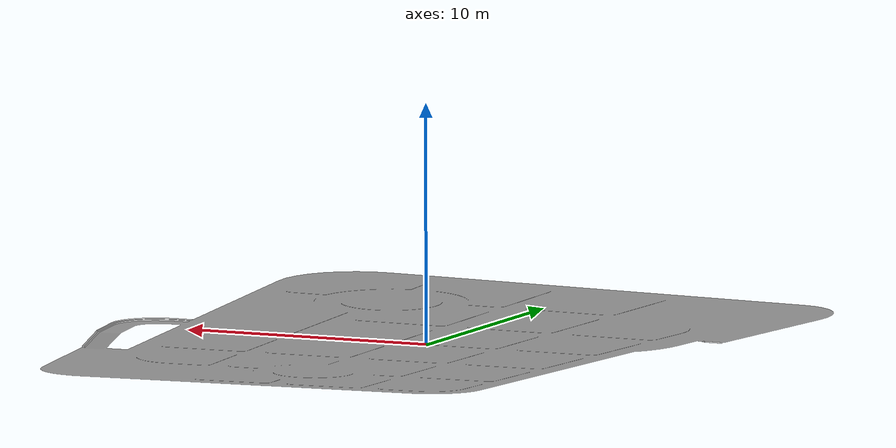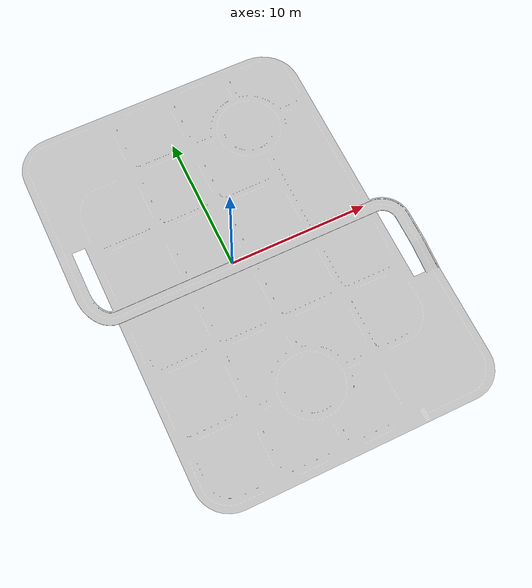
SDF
<?xml version="1.0"?>
<sdf version="1.3">
  <model name="cinves_city 2">
    <static>true</static>
    <link name="link">
      <collision name="collision">
        <geometry>
          <mesh>
            <uri>model://cinves_city2/meshes/cinves_city.dae</uri>
          </mesh>
        </geometry>
      </collision>
      <visual name="visual">
        <geometry>
          <mesh>
            <uri>model://cinves_city2/meshes/cinves_city.dae</uri>
          </mesh>
        </geometry>
        <material>
          <script>
            <uri>model://cinves_city2/materials/scripts</uri>
            <uri>model://cinves_city2/materials/textures</uri>
            <name>cinves_city2</name>
          </script>
        </material>
      </visual>
    </link>
  </model>
</sdf>
